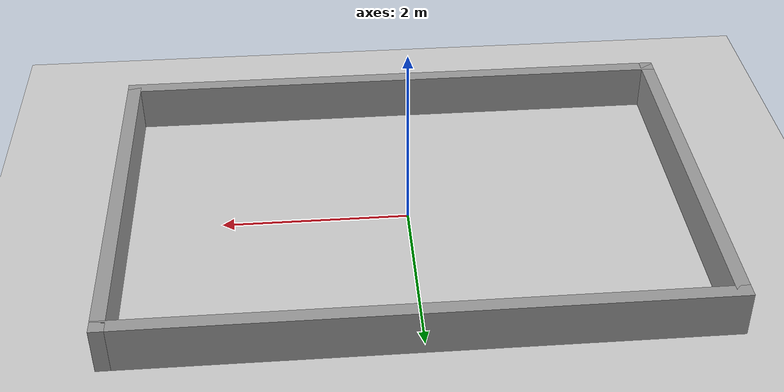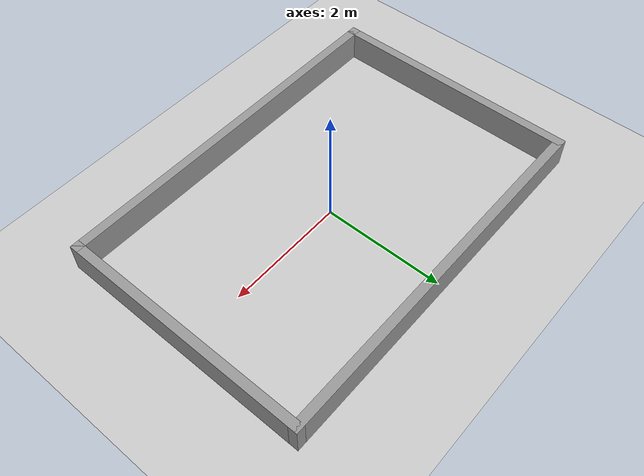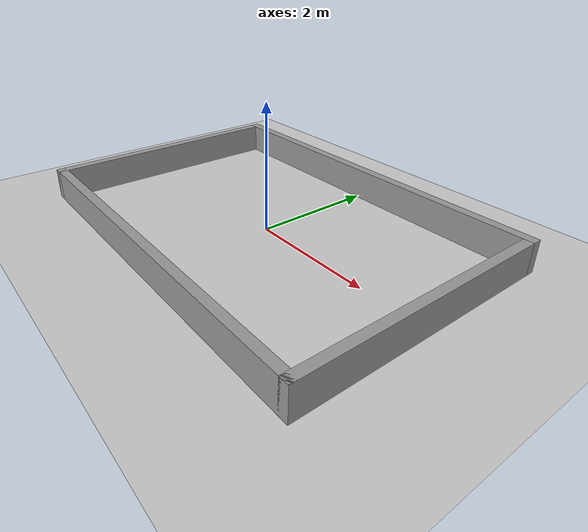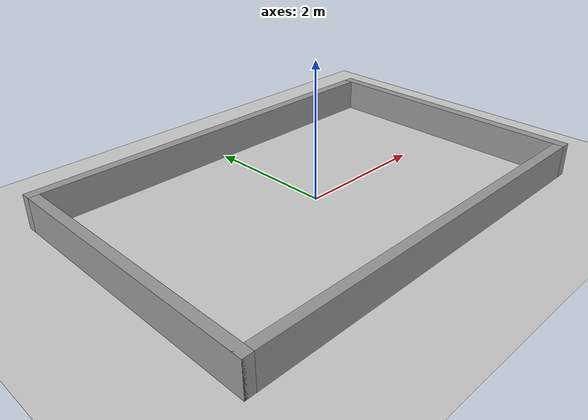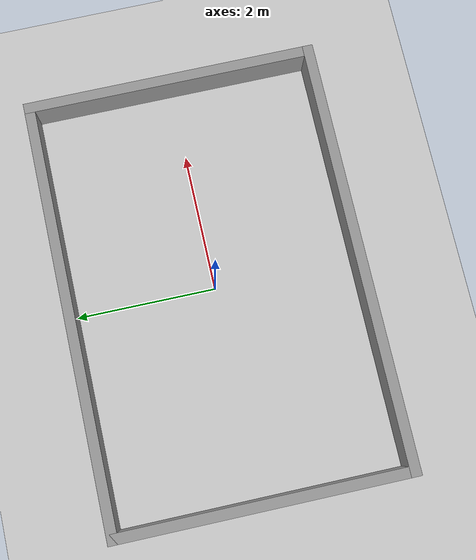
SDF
<sdf version="1.7">
 <world name="default">
  <light name="sun" type="directional">
   <pose>0 0 10 0 -0 0</pose>
   <diffuse>0.8 0.8 0.8 1</diffuse>
   <specular>0.2 0.2 0.2 1</specular>
   <attenuation>
    <range>1000</range>
    <constant>0.9</constant>
    <linear>0.01</linear>
    <quadratic>0.001</quadratic>
   </attenuation>
   <direction>-0.5 0.1 -0.9</direction>
   <spot><inner_angle>0</inner_angle><outer_angle>0</outer_angle><falloff>0</falloff></spot>
  </light>
  <model name="ground_plane">
   <static>1</static>
   <link name="link">
    <collision name="collision">
     <geometry><plane><normal>0 0 1</normal><size>100 100</size></plane></geometry>
     <surface><friction><ode><mu>100</mu><mu2>50</mu2></ode></friction></surface>
    </collision>
    <visual name="visual">
     <cast_shadows>0</cast_shadows>
     <geometry><plane><normal>0 0 1</normal><size>100 100</size></plane></geometry>
     <material>
      <script><uri>file://media/materials/scripts/gazebo.material</uri><name>Gazebo/Grey</name></script>
     </material>
    </visual>
   </link>
  </model>
  <gravity>0 0 -9.8</gravity>
  <magnetic_field>6e-06 2.3e-05 -4.2e-05</magnetic_field>
  <atmosphere type="adiabatic"/>
  <physics type="ode">
   <max_step_size>0.001</max_step_size>
   <real_time_factor>1</real_time_factor>
   <real_time_update_rate>0.0</real_time_update_rate>
   <max_step_size>0.003</max_step_size>
   <ode>
    <solver>
     <type>quick</type>
     <iters>150</iters>
     <precon_iters>0</precon_iters>
     <sor>1.400000</sor>
     <use_dynamic_moi_rescaling>1</use_dynamic_moi_rescaling>
    </solver>
    <constraints>
     <cfm>0.00001</cfm>
     <erp>0.2</erp>
     <contact_max_correcting_vel>2000.000000</contact_max_correcting_vel>
     <contact_surface_layer>0.01000</contact_surface_layer>
    </constraints>
   </ode>
  </physics>
  <scene><ambient>0.4 0.4 0.4 1</ambient><background>0.7 0.7 0.7 1</background><shadows>1</shadows></scene>
  <spherical_coordinates>
   <surface_model>EARTH_WGS84</surface_model>
   <latitude_deg>0</latitude_deg>
   <longitude_deg>0</longitude_deg>
   <elevation>0</elevation>
   <heading_deg>0</heading_deg>
  </spherical_coordinates>
  <model name="ral2310_3">
   <link name="Wall_0">
    <collision name="Wall_0_Collision">
     <geometry><box><size>6.25 0.15 0.5</size></box></geometry>
     <pose>0 0 0.25 0 -0 0</pose>
    </collision>
    <visual name="Wall_0_Visual">
     <pose>0 0 0.25 0 -0 0</pose>
     <geometry><box><size>6.25 0.15 0.5</size></box></geometry>
     <material>
      <script><uri>file://media/materials/scripts/gazebo.material</uri><name>Gazebo/Grey</name></script>
      <ambient>1 1 1 1</ambient>
     </material>
     <meta><layer>0</layer></meta>
    </visual>
    <pose>-0 -2.05 0 0 -0 0</pose>
   </link>
   <link name="Wall_1">
    <collision name="Wall_1_Collision">
     <geometry><box><size>4.25 0.15 0.5</size></box></geometry>
     <pose>0 0 0.25 0 -0 0</pose>
    </collision>
    <visual name="Wall_1_Visual">
     <pose>0 0 0.25 0 -0 0</pose>
     <geometry><box><size>4.25 0.15 0.5</size></box></geometry>
     <material>
      <script><uri>file://media/materials/scripts/gazebo.material</uri><name>Gazebo/Grey</name></script>
      <ambient>1 1 1 1</ambient>
     </material>
     <meta><layer>0</layer></meta>
    </visual>
    <pose>3.05 0 0 0 -0 1.5708</pose>
   </link>
   <link name="Wall_2">
    <collision name="Wall_2_Collision">
     <geometry><box><size>6.25 0.15 0.5</size></box></geometry>
     <pose>0 0 0.25 0 -0 0</pose>
    </collision>
    <visual name="Wall_2_Visual">
     <pose>0 0 0.25 0 -0 0</pose>
     <geometry><box><size>6.25 0.15 0.5</size></box></geometry>
     <material>
      <script><uri>file://media/materials/scripts/gazebo.material</uri><name>Gazebo/Grey</name></script>
      <ambient>1 1 1 1</ambient>
     </material>
     <meta><layer>0</layer></meta>
    </visual>
    <pose>-0 2.05 0 0 -0 3.14159</pose>
   </link>
   <link name="Wall_3">
    <collision name="Wall_3_Collision">
     <geometry><box><size>4.25 0.15 0.5</size></box></geometry>
     <pose>0 0 0.25 0 -0 0</pose>
    </collision>
    <visual name="Wall_3_Visual">
     <pose>0 0 0.25 0 -0 0</pose>
     <geometry><box><size>4.25 0.15 0.5</size></box></geometry>
     <material>
      <script><uri>file://media/materials/scripts/gazebo.material</uri><name>Gazebo/Grey</name></script>
      <ambient>1 1 1 1</ambient>
     </material>
     <meta><layer>0</layer></meta>
    </visual>
    <pose>-3.05 0 0 0 -0 -1.5708</pose>
   </link>
   <static>1</static>
  </model>
 </world>
</sdf>
